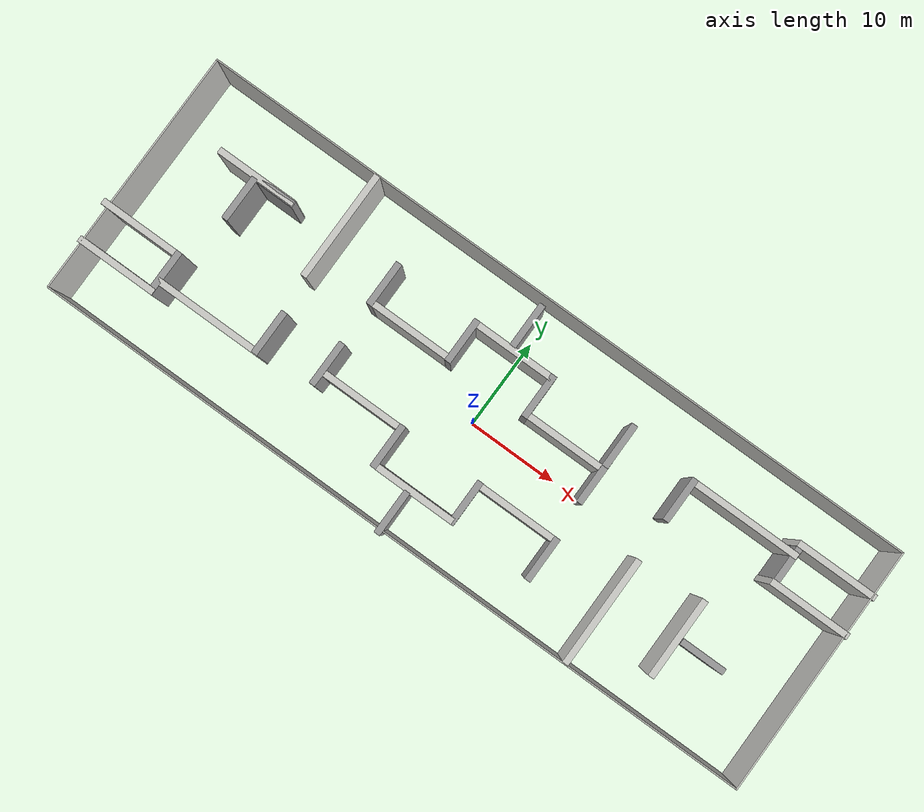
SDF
<sdf version="1.5">
 <world name="default">
  <plugin name="mrs_gazebo_static_transform_republisher_plugin" filename="libMRSGazeboStaticTransformRepublisher.so"/>
  <spherical_coordinates>
   <surface_model>EARTH_WGS84</surface_model>
   <latitude_deg>47.397743</latitude_deg>
   <longitude_deg>8.545594</longitude_deg>
   <elevation>0.0</elevation>
   <heading_deg>0</heading_deg>
  </spherical_coordinates>
  <physics name="default_physics" default="0" type="ode">
   <gravity>0 0 -9.8066</gravity>
   <ode>
    <solver>
     <type>quick</type>
     <iters>10</iters>
     <sor>1.3</sor>
     <use_dynamic_moi_rescaling>0</use_dynamic_moi_rescaling>
    </solver>
    <constraints>
     <cfm>0</cfm>
     <erp>0.2</erp>
     <contact_max_correcting_vel>1000</contact_max_correcting_vel>
     <contact_surface_layer>0.001</contact_surface_layer>
    </constraints>
   </ode>
   <max_step_size>0.004</max_step_size>
   <real_time_factor>1</real_time_factor>
   <real_time_update_rate>250</real_time_update_rate>
   <magnetic_field>6.0e-06 2.3e-05 -4.2e-05</magnetic_field>
  </physics>
  <scene><shadows>false</shadows></scene>
  <light name="sun" type="directional">
   <pose>0 0 1000 0.4 0.2 0</pose>
   <diffuse>1 1 1 1</diffuse>
   <specular>0.6 0.6 0.6 1</specular>
   <direction>0.1 0.1 -0.9</direction>
   <attenuation>
    <range>20</range>
    <constant>0.5</constant>
    <linear>0.01</linear>
    <quadratic>0.001</quadratic>
   </attenuation>
  </light>
  <include><uri>model://inespasa_large</uri></include>
  <include><name>wi1</name><pose>26.83 8.40 0.0 0 0 0</pose><uri>model://wall_12x8</uri></include>
  <include><name>wi2</name><pose>-26.63 -6.18 0.0 0 0 0</pose><uri>model://wall_12x8</uri></include>
  <include><name>wi3</name><pose>48.56 8.61 0.0 0 0 0</pose><uri>model://wall_short_5x8</uri></include>
  <include><name>wi4</name><pose>-16.65 -3.79 0.0 0 0 0</pose><uri>model://wall_short_5x8</uri></include>
  <include><name>wi5</name><pose>20.62 4.03 0.0 0 0 0</pose><uri>model://wall_short_9x8</uri></include>
  <include><name>wi6</name><pose>20.60 -0.49 0.0 0 0 0</pose><uri>model://wall_short_9x8</uri></include>
  <include><name>wi7</name><pose>-53.26 -8.58 0.0 0 0 0</pose><uri>model://wall_short_9x8</uri></include>
  <include><name>wi8</name><pose>-52.91 -12.88 0.0 0 0 0</pose><uri>model://wall_short_9x8</uri></include>
  <include><name>wc1</name><pose>-16.80 3 0.0 0 0 0</pose><uri>model://wall_short_9x8</uri></include>
  <include><name>wc2</name><pose>-26.07 -1.26 0.0 0 0 0</pose><uri>model://wall_short_9x8</uri></include>
  <include><name>wc3</name><pose>-7.47 -1.26 0.0 0 0 0</pose><uri>model://wall_short_9x8</uri></include>
  <include><name>wc4</name><pose>-25.99 -9.5 0.0 0 0 0</pose><uri>model://wall_short_9x8</uri></include>
  <include><name>wc5</name><pose>-7.17 -9.5 0.0 0 0 0</pose><uri>model://wall_short_9x8</uri></include>
  <include><name>wc6</name><pose>-16.42 -13.79 0.0 0 0 0</pose><uri>model://wall_short_9x8</uri></include>
  <include><name>wc7</name><pose>10.65 7.80 0.0 0 0 0</pose><uri>model://wall_short_5x8</uri></include>
  <include><name>wc8</name><pose>19.80 7.80 0.0 0 0 0</pose><uri>model://wall_short_5x8</uri></include>
  <include><name>wc9</name><pose>10.83 -4.67 0.0 0 0 0</pose><uri>model://wall_short_5x8</uri></include>
  <include><name>wc10</name><pose>20.07 -4.67 0.0 0 0 0</pose><uri>model://wall_short_5x8</uri></include>
  <include><name>wallv2_1</name><pose>1.38 -1.67 0.05 0 0 0</pose><uri>model://wall_short_5x8</uri></include>
  <include><name>wallv2_2</name><pose>-4.925 -2.53 0.05 0 0 0</pose><uri>model://wall_short_5x8</uri></include>
  <include><name>wallv2_3</name><pose>28.91 4.206 0.05 0 0 0</pose><uri>model://wall_short_5x8</uri></include>
  <include><name>wallv2_4</name><pose>1.26 7.82 0.05 0 0 0</pose><uri>model://wall_short_5x8</uri></include>
  <include><name>wallv2_5</name><pose>29.2 -4.71 0.05 0 0 0</pose><uri>model://wall_short_5x8</uri></include>
  <include><name>wallv2_6</name><pose>36.63 7.68 0.05 0 0 0</pose><uri>model://wall_short_5x8</uri></include>
  <include><name>wallv3_1</name><pose>-20.63 7.66 0.05 0 0 -1.57</pose><uri>model://wall_12x8</uri></include>
  <include><name>wallv3_2</name><pose>21.64 -7.67 0.05 0 0 -1.57</pose><uri>model://wall_12x8</uri></include>
  <include>
   <name>wallv4_1</name>
   <pose>-26.56 -9.3 0.05 0 0 -1.57</pose>
   <uri>model://wall_short_5x8</uri>
  </include>
  <include>
   <name>wallv4_2</name>
   <pose>33.34 -21.44 0.05 0 0 -1.57</pose>
   <uri>model://wall_short_5x8</uri>
  </include>
  <include><name>wallv4_3</name><pose>-15.03 6.33 0.05 0 0 0</pose><uri>model://wall_short_5x8</uri></include>
  <include>
   <name>wallv4_4</name>
   <pose>23.46 10.63 0.05 0 0 -1.57</pose>
   <uri>model://wall_short_9x8</uri>
  </include>
  <include><name>wallv4_5</name><pose>14.89 12.71 0.05 0 0 0</pose><uri>model://wall_short_5x8</uri></include>
  <include><name>wallv4_6</name><pose>14.91 -9.58 0.05 0 0 0</pose><uri>model://wall_short_5x8</uri></include>
  <include><name>wallv4_8</name><pose>28.89 8.48 0.05 0 0 0</pose><uri>model://wall_short_5x8</uri></include>
  <include><name>wallv4_9</name><pose>-47.06 2.07 0.05 0 0 0</pose><uri>model://wall_short_9x8</uri></include>
  <model name="the_void">
   <static>1</static>
   <link name="link">
    <pose>0 0 0.1 0 -0 0</pose>
    <visual name="the_void">
     <pose>0 0 2 0 -0 0</pose>
     <geometry><sphere><radius>0.25</radius></sphere></geometry>
     <material>
      <script><uri>file://media/materials/scripts/Gazebo.material</uri><name>Gazebo/Black</name></script>
     </material>
    </visual>
   </link>
   <pose>-1000 -1000 0 0 0 0</pose>
  </model>
  <plugin name="mrs_gazebo_rviz_cam_synchronizer" filename="libMRSGazeboRvizCameraSynchronizer.so">
   <target_frame_id>gazebo_user_camera</target_frame_id>
   <world_origin_frame_id>uav1/gps_origin</world_origin_frame_id>
   <frame_to_follow>uav1</frame_to_follow>
  </plugin>
 </world>
</sdf>

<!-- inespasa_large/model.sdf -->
<sdf version='1.7'>
  <model name='inespasa_large'>
    <pose>0.1 0 0 0 -0 0</pose>
    <link name='Wall_3'>
      <collision name='Wall_3_Collision'>
        <geometry>
          <box>
            <size>81.95 0.15 8</size>
          </box>
        </geometry>
        <pose>0 0 4 0 -0 0</pose>
      </collision>
      <visual name='Wall_3_Visual'>
        <pose>0 0 4 0 -0 0</pose>
        <geometry>
          <box>
            <size>81.95 0.15 8</size>
          </box>
        </geometry>
        <material>
          <script>
            <uri>file://media/materials/scripts/gazebo.material</uri>
            <name>Gazebo/CeilingTiled</name>
          </script>
          <ambient>1 1 1 1</ambient>
        </material>
        <meta>
          <layer>0</layer>
        </meta>
      </visual>
      <pose>-0 13.8 0 0 -0 0</pose>
    </link>
    <link name='Wall_4'>
      <collision name='Wall_4_Collision'>
        <geometry>
          <box>
            <size>27.75 0.15 8</size>
          </box>
        </geometry>
        <pose>0 0 4 0 -0 0</pose>
      </collision>
      <visual name='Wall_4_Visual'>
        <pose>0 0 4 0 -0 0</pose>
        <geometry>
          <box>
            <size>27.75 0.15 8</size>
          </box>
        </geometry>
        <material>
          <script>
            <uri>file://media/materials/scripts/gazebo.material</uri>
            <name>Gazebo/CeilingTiled</name>
          </script>
          <ambient>1 1 1 1</ambient>
        </material>
        <meta>
          <layer>0</layer>
        </meta>
      </visual>
      <pose>40.9 0 0 0 -0 -1.5708</pose>
    </link>
    <link name='Wall_6'>
      <collision name='Wall_6_Collision'>
        <geometry>
          <box>
            <size>81.95 0.15 8</size>
          </box>
        </geometry>
        <pose>0 0 4 0 -0 0</pose>
      </collision>
      <visual name='Wall_6_Visual'>
        <pose>0 0 4 0 -0 0</pose>
        <geometry>
          <box>
            <size>81.95 0.15 8</size>
          </box>
        </geometry>
        <material>
          <script>
            <uri>file://media/materials/scripts/gazebo.material</uri>
            <name>Gazebo/CeilingTiled</name>
          </script>
          <ambient>1 1 1 1</ambient>
        </material>
        <meta>
          <layer>0</layer>
        </meta>
      </visual>
      <pose>-0 -13.8 0 0 -0 3.14159</pose>
    </link>
    <link name='Wall_7'>
      <collision name='Wall_7_Collision'>
        <geometry>
          <box>
            <size>27.75 0.15 8</size>
          </box>
        </geometry>
        <pose>0 0 4 0 -0 0</pose>
      </collision>
      <visual name='Wall_7_Visual'>
        <pose>0 0 4 0 -0 0</pose>
        <geometry>
          <box>
            <size>27.75 0.15 8</size>
          </box>
        </geometry>
        <material>
          <script>
            <uri>file://media/materials/scripts/gazebo.material</uri>
            <name>Gazebo/CeilingTiled</name>
          </script>
          <ambient>1 1 1 1</ambient>
        </material>
        <meta>
          <layer>0</layer>
        </meta>
      </visual>
      <pose>-40.9 0 0 0 -0 1.5708</pose>
    </link>
    <static>1</static>
  </model>
</sdf>

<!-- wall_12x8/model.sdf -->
<sdf version='1.7'>
  <model name='wall_12x8'>
    <pose>1.91467 -1.1845 0 0 -0 0</pose>
    <link name='Wall_0'>
      <collision name='Wall_0_Collision'>
        <geometry>
          <box>
            <size>12.2 0.7 8</size>
          </box>
        </geometry>
        <pose>0 0 4 0 -0 0</pose>
      </collision>
      <visual name='Wall_0_Visual'>
        <pose>0 0 4 0 -0 0</pose>
        <geometry>
          <box>
            <size>12.2 0.7 8</size>
          </box>
        </geometry>
        <material>
          <script>
            <uri>file://media/materials/scripts/gazebo.material</uri>
            <name>Gazebo/CeilingTiled</name>
          </script>
          <ambient>1 1 1 1</ambient>
        </material>
        <meta>
          <layer>0</layer>
        </meta>
      </visual>
      <pose>-0 -0.8345 0 0 -0 0</pose>
    </link>
    <static>1</static>
  </model>
</sdf>

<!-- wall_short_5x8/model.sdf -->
<sdf version='1.7'>
  <model name='wall_short_5x8'>
    <pose>-16.2968 -4.76001 0 0 -0 0</pose>
    <link name='Wall_2'>
      <collision name='Wall_2_Collision'>
        <geometry>
          <box>
            <size>5 0.7 8</size>
          </box>
        </geometry>
        <pose>0 0 4 0 -0 0</pose>
      </collision>
      <visual name='Wall_2_Visual'>
        <pose>0 0 4 0 -0 0</pose>
        <geometry>
          <box>
            <size>5 0.7 8</size>
          </box>
        </geometry>
        <material>
          <script>
            <uri>file://media/materials/scripts/gazebo.material</uri>
            <name>Gazebo/Grey</name>
          </script>
          <ambient>1 1 1 1</ambient>
        </material>
        <meta>
          <layer>0</layer>
        </meta>
      </visual>
      <pose>-15.9468 -2.26001 0 0 -0 -1.5708</pose>
    </link>
    <static>1</static>
  </model>
</sdf>

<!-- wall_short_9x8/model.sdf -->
<sdf version='1.7'>
  <model name='wall_short_9x8'>
    <pose>20.6228 5.03257 0 0 -0 0</pose>
    <link name='Wall_0'>
      <collision name='Wall_0_Collision'>
        <geometry>
          <box>
            <size>9 0.7 8</size>
          </box>
        </geometry>
        <pose>0 0 4 0 -0 0</pose>
      </collision>
      <visual name='Wall_0_Visual'>
        <pose>0 0 4 0 -0 0</pose>
        <geometry>
          <box>
            <size>9 0.7 8</size>
          </box>
        </geometry>
        <material>
          <script>
            <uri>file://media/materials/scripts/gazebo.material</uri>
            <name>Gazebo/CeilingTiled</name>
          </script>
          <ambient>1 1 1 1</ambient>
        </material>
        <meta>
          <layer>0</layer>
        </meta>
      </visual>
      <pose>16.1228 4.68257 0 0 -0 0</pose>
    </link>
    <static>1</static>
  </model>
</sdf>
